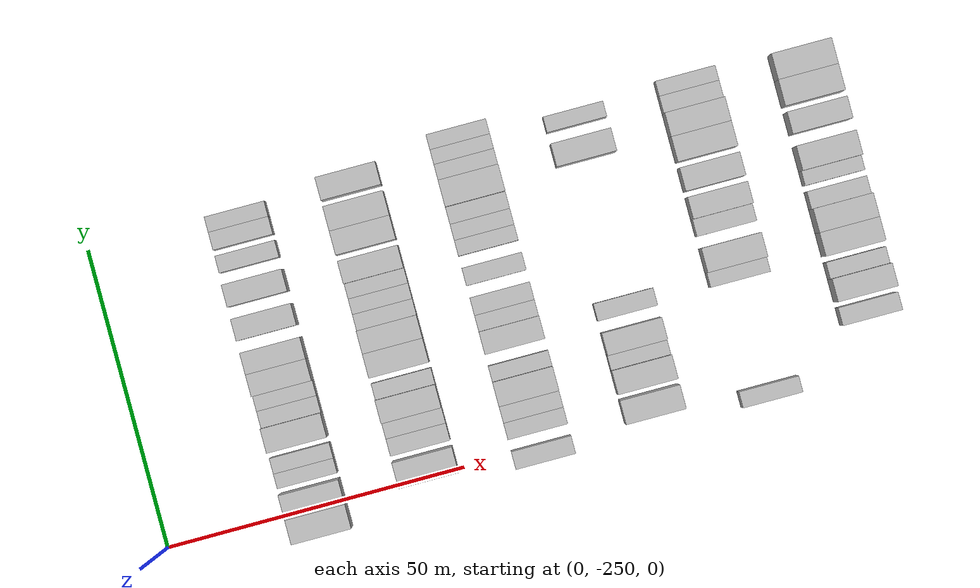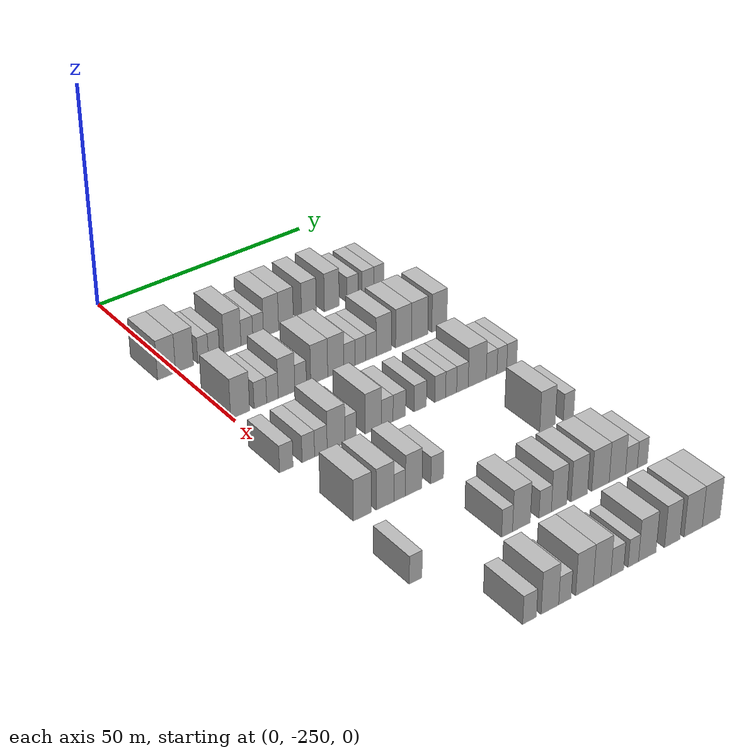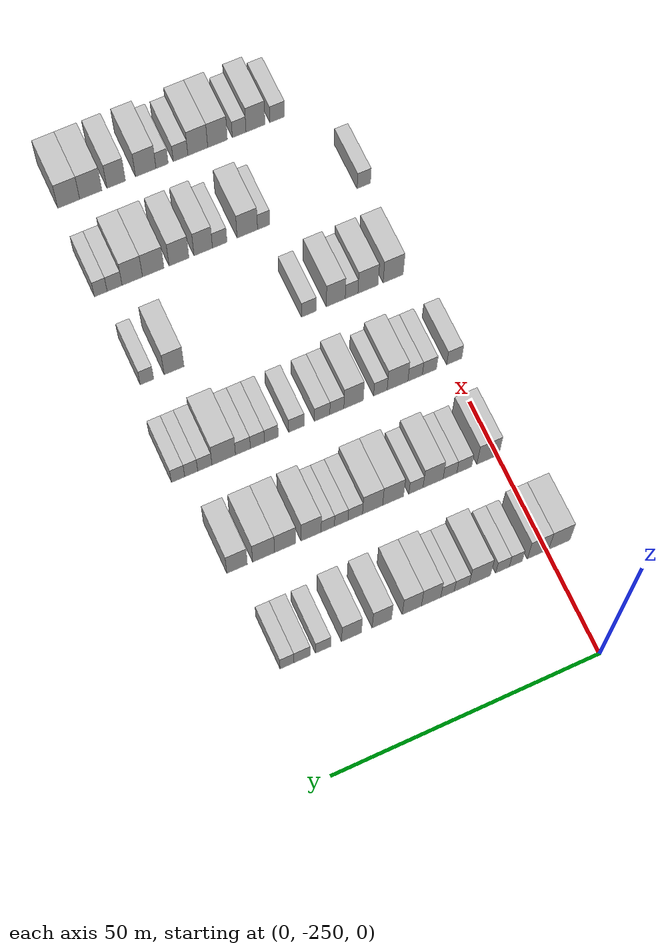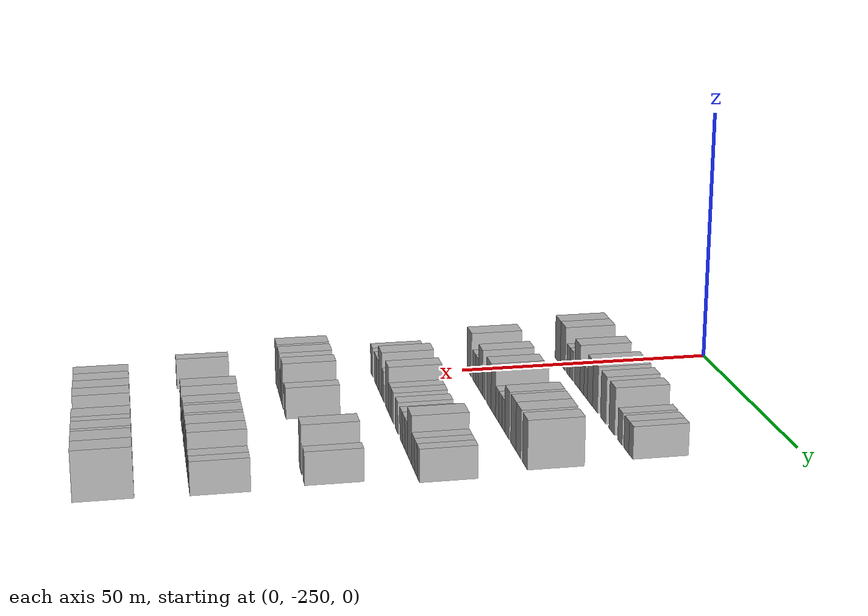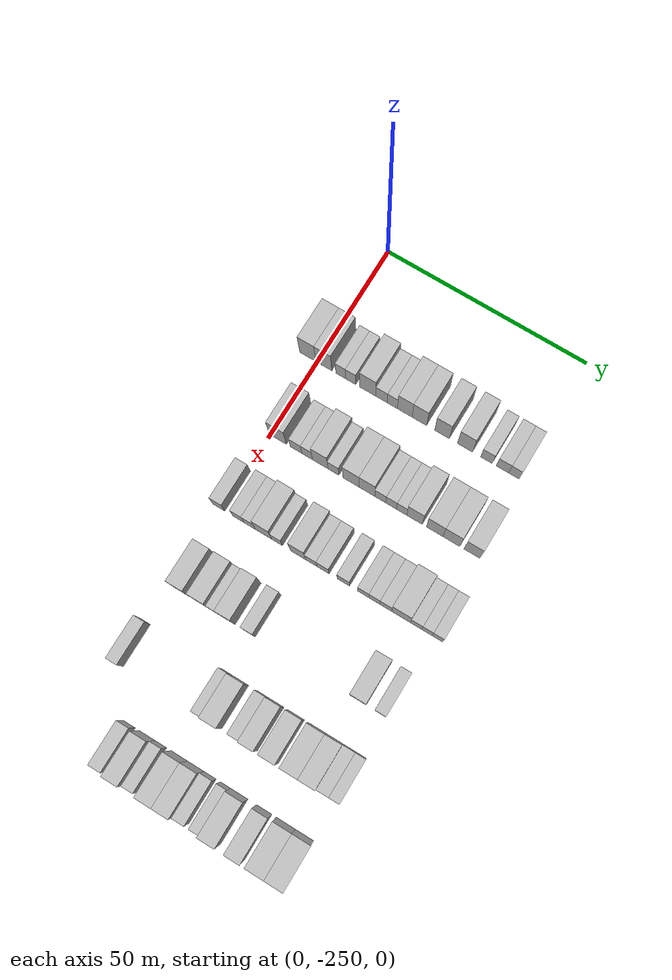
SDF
<sdf version="1.6">
 <world name="default">
  <model name="building_26">
   <static>1</static>
   <pose>25.0000 -252.3965 0 0.000000 0.000000 0.000000</pose>
   <link name="link">
    <pose>0 0 4.50 0 0 0</pose>
    <collision name="collision"><geometry><box><size>10.0000 4.0735 9.0000</size></box></geometry></collision>
    <visual name="visual">
     <cast_shadows>0</cast_shadows>
     <geometry><box><size>10.0000 4.0735 9.0000</size></box></geometry>
     <material>
      <script>
       <uri>model://HANNAS_wall/materials/scripts</uri>
       <uri>model://HANNAS_wall/materials/textures</uri>
       <name>vrc/HANNAS_wall</name>
      </script>
     </material>
    </visual>
   </link>
  </model>
  <model name="building_27">
   <static>1</static>
   <pose>25.0000 -248.3102 0 0.000000 0.000000 0.000000</pose>
   <link name="link">
    <pose>0 0 4.50 0 0 0</pose>
    <collision name="collision"><geometry><box><size>10.0000 4.0991 9.0000</size></box></geometry></collision>
    <visual name="visual">
     <cast_shadows>0</cast_shadows>
     <geometry><box><size>10.0000 4.0991 9.0000</size></box></geometry>
     <material>
      <script>
       <uri>model://HANNAS_wall/materials/scripts</uri>
       <uri>model://HANNAS_wall/materials/textures</uri>
       <name>vrc/HANNAS_wall</name>
      </script>
     </material>
    </visual>
   </link>
  </model>
  <model name="building_28">
   <static>1</static>
   <pose>25.0000 -244.0302 0 0.000000 0.000000 0.000000</pose>
   <link name="link">
    <pose>0 0 3.00 0 0 0</pose>
    <collision name="collision"><geometry><box><size>10.0000 2.4609 6.0000</size></box></geometry></collision>
    <visual name="visual">
     <cast_shadows>0</cast_shadows>
     <geometry><box><size>10.0000 2.4609 6.0000</size></box></geometry>
     <material>
      <script>
       <uri>model://HANNAS_wall/materials/scripts</uri>
       <uri>model://HANNAS_wall/materials/textures</uri>
       <name>vrc/HANNAS_wall</name>
      </script>
     </material>
    </visual>
   </link>
  </model>
  <model name="building_29">
   <static>1</static>
   <pose>25.0000 -241.5087 0 0.000000 0.000000 0.000000</pose>
   <link name="link">
    <pose>0 0 3.00 0 0 0</pose>
    <collision name="collision"><geometry><box><size>10.0000 2.5821 6.0000</size></box></geometry></collision>
    <visual name="visual">
     <cast_shadows>0</cast_shadows>
     <geometry><box><size>10.0000 2.5821 6.0000</size></box></geometry>
     <material>
      <script>
       <uri>model://HANNAS_wall/materials/scripts</uri>
       <uri>model://HANNAS_wall/materials/textures</uri>
       <name>vrc/HANNAS_wall</name>
      </script>
     </material>
    </visual>
   </link>
  </model>
  <model name="building_30">
   <static>1</static>
   <pose>25.0000 -237.1958 0 0.000000 0.000000 0.000000</pose>
   <link name="link">
    <pose>0 0 4.50 0 0 0</pose>
    <collision name="collision"><geometry><box><size>10.0000 4.0437 9.0000</size></box></geometry></collision>
    <visual name="visual">
     <cast_shadows>0</cast_shadows>
     <geometry><box><size>10.0000 4.0437 9.0000</size></box></geometry>
     <material>
      <script>
       <uri>model://HANNAS_wall/materials/scripts</uri>
       <uri>model://HANNAS_wall/materials/textures</uri>
       <name>vrc/HANNAS_wall</name>
      </script>
     </material>
    </visual>
   </link>
  </model>
  <model name="building_31">
   <static>1</static>
   <pose>25.0000 -233.7593 0 0.000000 0.000000 0.000000</pose>
   <link name="link">
    <pose>0 0 3.00 0 0 0</pose>
    <collision name="collision"><geometry><box><size>10.0000 2.8293 6.0000</size></box></geometry></collision>
    <visual name="visual">
     <cast_shadows>0</cast_shadows>
     <geometry><box><size>10.0000 2.8293 6.0000</size></box></geometry>
     <material>
      <script>
       <uri>model://HANNAS_wall/materials/scripts</uri>
       <uri>model://HANNAS_wall/materials/textures</uri>
       <name>vrc/HANNAS_wall</name>
      </script>
     </material>
    </visual>
   </link>
  </model>
  <model name="building_32">
   <static>1</static>
   <pose>25.0000 -231.0719 0 0.000000 0.000000 0.000000</pose>
   <link name="link">
    <pose>0 0 3.00 0 0 0</pose>
    <collision name="collision"><geometry><box><size>10.0000 2.5455 6.0000</size></box></geometry></collision>
    <visual name="visual">
     <cast_shadows>0</cast_shadows>
     <geometry><box><size>10.0000 2.5455 6.0000</size></box></geometry>
     <material>
      <script>
       <uri>model://HANNAS_wall/materials/scripts</uri>
       <uri>model://HANNAS_wall/materials/textures</uri>
       <name>vrc/HANNAS_wall</name>
      </script>
     </material>
    </visual>
   </link>
  </model>
  <model name="building_33">
   <static>1</static>
   <pose>25.0000 -227.9759 0 0.000000 0.000000 0.000000</pose>
   <link name="link">
    <pose>0 0 4.50 0 0 0</pose>
    <collision name="collision"><geometry><box><size>10.0000 3.6464 9.0000</size></box></geometry></collision>
    <visual name="visual">
     <cast_shadows>0</cast_shadows>
     <geometry><box><size>10.0000 3.6464 9.0000</size></box></geometry>
     <material>
      <script>
       <uri>model://HANNAS_wall/materials/scripts</uri>
       <uri>model://HANNAS_wall/materials/textures</uri>
       <name>vrc/HANNAS_wall</name>
      </script>
     </material>
    </visual>
   </link>
  </model>
  <model name="building_34">
   <static>1</static>
   <pose>25.0000 -224.3496 0 0.000000 0.000000 0.000000</pose>
   <link name="link">
    <pose>0 0 4.50 0 0 0</pose>
    <collision name="collision"><geometry><box><size>10.0000 3.6063 9.0000</size></box></geometry></collision>
    <visual name="visual">
     <cast_shadows>0</cast_shadows>
     <geometry><box><size>10.0000 3.6063 9.0000</size></box></geometry>
     <material>
      <script>
       <uri>model://HANNAS_wall/materials/scripts</uri>
       <uri>model://HANNAS_wall/materials/textures</uri>
       <name>vrc/HANNAS_wall</name>
      </script>
     </material>
    </visual>
   </link>
  </model>
  <model name="building_35">
   <static>1</static>
   <pose>25.0000 -218.7335 0 0.000000 0.000000 0.000000</pose>
   <link name="link">
    <pose>0 0 4.50 0 0 0</pose>
    <collision name="collision"><geometry><box><size>10.0000 3.6258 9.0000</size></box></geometry></collision>
    <visual name="visual">
     <cast_shadows>0</cast_shadows>
     <geometry><box><size>10.0000 3.6258 9.0000</size></box></geometry>
     <material>
      <script>
       <uri>model://HANNAS_wall/materials/scripts</uri>
       <uri>model://HANNAS_wall/materials/textures</uri>
       <name>vrc/HANNAS_wall</name>
      </script>
     </material>
    </visual>
   </link>
  </model>
  <model name="building_36">
   <static>1</static>
   <pose>25.0000 -213.0694 0 0.000000 0.000000 0.000000</pose>
   <link name="link">
    <pose>0 0 4.50 0 0 0</pose>
    <collision name="collision"><geometry><box><size>10.0000 3.7023 9.0000</size></box></geometry></collision>
    <visual name="visual">
     <cast_shadows>0</cast_shadows>
     <geometry><box><size>10.0000 3.7023 9.0000</size></box></geometry>
     <material>
      <script>
       <uri>model://HANNAS_wall/materials/scripts</uri>
       <uri>model://HANNAS_wall/materials/textures</uri>
       <name>vrc/HANNAS_wall</name>
      </script>
     </material>
    </visual>
   </link>
  </model>
  <model name="building_37">
   <static>1</static>
   <pose>25.0000 -207.8051 0 0.000000 0.000000 0.000000</pose>
   <link name="link">
    <pose>0 0 3.00 0 0 0</pose>
    <collision name="collision"><geometry><box><size>10.0000 2.8263 6.0000</size></box></geometry></collision>
    <visual name="visual">
     <cast_shadows>0</cast_shadows>
     <geometry><box><size>10.0000 2.8263 6.0000</size></box></geometry>
     <material>
      <script>
       <uri>model://HANNAS_wall/materials/scripts</uri>
       <uri>model://HANNAS_wall/materials/textures</uri>
       <name>vrc/HANNAS_wall</name>
      </script>
     </material>
    </visual>
   </link>
  </model>
  <model name="building_38">
   <static>1</static>
   <pose>25.0000 -203.8979 0 0.000000 0.000000 0.000000</pose>
   <link name="link">
    <pose>0 0 3.00 0 0 0</pose>
    <collision name="collision"><geometry><box><size>10.0000 2.9881 6.0000</size></box></geometry></collision>
    <visual name="visual">
     <cast_shadows>0</cast_shadows>
     <geometry><box><size>10.0000 2.9881 6.0000</size></box></geometry>
     <material>
      <script>
       <uri>model://HANNAS_wall/materials/scripts</uri>
       <uri>model://HANNAS_wall/materials/textures</uri>
       <name>vrc/HANNAS_wall</name>
      </script>
     </material>
    </visual>
   </link>
  </model>
  <model name="building_39">
   <static>1</static>
   <pose>25.0000 -201.1234 0 0.000000 0.000000 0.000000</pose>
   <link name="link">
    <pose>0 0 3.00 0 0 0</pose>
    <collision name="collision"><geometry><box><size>10.0000 2.5610 6.0000</size></box></geometry></collision>
    <visual name="visual">
     <cast_shadows>0</cast_shadows>
     <geometry><box><size>10.0000 2.5610 6.0000</size></box></geometry>
     <material>
      <script>
       <uri>model://HANNAS_wall/materials/scripts</uri>
       <uri>model://HANNAS_wall/materials/textures</uri>
       <name>vrc/HANNAS_wall</name>
      </script>
     </material>
    </visual>
   </link>
  </model>
  <model name="building_187">
   <static>1</static>
   <pose>44.0000 -248.0796 0 0.000000 0.000000 0.000000</pose>
   <link name="link">
    <pose>0 0 4.50 0 0 0</pose>
    <collision name="collision"><geometry><box><size>10.0000 4.2843 9.0000</size></box></geometry></collision>
    <visual name="visual">
     <cast_shadows>0</cast_shadows>
     <geometry><box><size>10.0000 4.2843 9.0000</size></box></geometry>
     <material>
      <script>
       <uri>model://HANNAS_wall/materials/scripts</uri>
       <uri>model://HANNAS_wall/materials/textures</uri>
       <name>vrc/HANNAS_wall</name>
      </script>
     </material>
    </visual>
   </link>
  </model>
  <model name="building_188">
   <static>1</static>
   <pose>44.0000 -243.5016 0 0.000000 0.000000 0.000000</pose>
   <link name="link">
    <pose>0 0 3.00 0 0 0</pose>
    <collision name="collision"><geometry><box><size>10.0000 2.8717 6.0000</size></box></geometry></collision>
    <visual name="visual">
     <cast_shadows>0</cast_shadows>
     <geometry><box><size>10.0000 2.8717 6.0000</size></box></geometry>
     <material>
      <script>
       <uri>model://HANNAS_wall/materials/scripts</uri>
       <uri>model://HANNAS_wall/materials/textures</uri>
       <name>vrc/HANNAS_wall</name>
      </script>
     </material>
    </visual>
   </link>
  </model>
  <model name="building_189">
   <static>1</static>
   <pose>44.0000 -240.7435 0 0.000000 0.000000 0.000000</pose>
   <link name="link">
    <pose>0 0 3.00 0 0 0</pose>
    <collision name="collision"><geometry><box><size>10.0000 2.6445 6.0000</size></box></geometry></collision>
    <visual name="visual">
     <cast_shadows>0</cast_shadows>
     <geometry><box><size>10.0000 2.6445 6.0000</size></box></geometry>
     <material>
      <script>
       <uri>model://HANNAS_wall/materials/scripts</uri>
       <uri>model://HANNAS_wall/materials/textures</uri>
       <name>vrc/HANNAS_wall</name>
      </script>
     </material>
    </visual>
   </link>
  </model>
  <model name="building_190">
   <static>1</static>
   <pose>44.0000 -237.4860 0 0.000000 0.000000 0.000000</pose>
   <link name="link">
    <pose>0 0 4.50 0 0 0</pose>
    <collision name="collision"><geometry><box><size>10.0000 3.8706 9.0000</size></box></geometry></collision>
    <visual name="visual">
     <cast_shadows>0</cast_shadows>
     <geometry><box><size>10.0000 3.8706 9.0000</size></box></geometry>
     <material>
      <script>
       <uri>model://HANNAS_wall/materials/scripts</uri>
       <uri>model://HANNAS_wall/materials/textures</uri>
       <name>vrc/HANNAS_wall</name>
      </script>
     </material>
    </visual>
   </link>
  </model>
  <model name="building_191">
   <static>1</static>
   <pose>44.0000 -234.1976 0 0.000000 0.000000 0.000000</pose>
   <link name="link">
    <pose>0 0 3.00 0 0 0</pose>
    <collision name="collision"><geometry><box><size>10.0000 2.7062 6.0000</size></box></geometry></collision>
    <visual name="visual">
     <cast_shadows>0</cast_shadows>
     <geometry><box><size>10.0000 2.7062 6.0000</size></box></geometry>
     <material>
      <script>
       <uri>model://HANNAS_wall/materials/scripts</uri>
       <uri>model://HANNAS_wall/materials/textures</uri>
       <name>vrc/HANNAS_wall</name>
      </script>
     </material>
    </visual>
   </link>
  </model>
  <model name="building_192">
   <static>1</static>
   <pose>44.0000 -229.8366 0 0.000000 0.000000 0.000000</pose>
   <link name="link">
    <pose>0 0 4.50 0 0 0</pose>
    <collision name="collision"><geometry><box><size>10.0000 4.0158 9.0000</size></box></geometry></collision>
    <visual name="visual">
     <cast_shadows>0</cast_shadows>
     <geometry><box><size>10.0000 4.0158 9.0000</size></box></geometry>
     <material>
      <script>
       <uri>model://HANNAS_wall/materials/scripts</uri>
       <uri>model://HANNAS_wall/materials/textures</uri>
       <name>vrc/HANNAS_wall</name>
      </script>
     </material>
    </visual>
   </link>
  </model>
  <model name="building_193">
   <static>1</static>
   <pose>44.0000 -225.9093 0 0.000000 0.000000 0.000000</pose>
   <link name="link">
    <pose>0 0 4.50 0 0 0</pose>
    <collision name="collision"><geometry><box><size>10.0000 3.8388 9.0000</size></box></geometry></collision>
    <visual name="visual">
     <cast_shadows>0</cast_shadows>
     <geometry><box><size>10.0000 3.8388 9.0000</size></box></geometry>
     <material>
      <script>
       <uri>model://HANNAS_wall/materials/scripts</uri>
       <uri>model://HANNAS_wall/materials/textures</uri>
       <name>vrc/HANNAS_wall</name>
      </script>
     </material>
    </visual>
   </link>
  </model>
  <model name="building_194">
   <static>1</static>
   <pose>44.0000 -222.6290 0 0.000000 0.000000 0.000000</pose>
   <link name="link">
    <pose>0 0 3.00 0 0 0</pose>
    <collision name="collision"><geometry><box><size>10.0000 2.7217 6.0000</size></box></geometry></collision>
    <visual name="visual">
     <cast_shadows>0</cast_shadows>
     <geometry><box><size>10.0000 2.7217 6.0000</size></box></geometry>
     <material>
      <script>
       <uri>model://HANNAS_wall/materials/scripts</uri>
       <uri>model://HANNAS_wall/materials/textures</uri>
       <name>vrc/HANNAS_wall</name>
      </script>
     </material>
    </visual>
   </link>
  </model>
  <model name="building_195">
   <static>1</static>
   <pose>44.0000 -219.9682 0 0.000000 0.000000 0.000000</pose>
   <link name="link">
    <pose>0 0 3.00 0 0 0</pose>
    <collision name="collision"><geometry><box><size>10.0000 2.5999 6.0000</size></box></geometry></collision>
    <visual name="visual">
     <cast_shadows>0</cast_shadows>
     <geometry><box><size>10.0000 2.5999 6.0000</size></box></geometry>
     <material>
      <script>
       <uri>model://HANNAS_wall/materials/scripts</uri>
       <uri>model://HANNAS_wall/materials/textures</uri>
       <name>vrc/HANNAS_wall</name>
      </script>
     </material>
    </visual>
   </link>
  </model>
  <model name="building_196">
   <static>1</static>
   <pose>44.0000 -217.4107 0 0.000000 0.000000 0.000000</pose>
   <link name="link">
    <pose>0 0 3.00 0 0 0</pose>
    <collision name="collision"><geometry><box><size>10.0000 2.5150 6.0000</size></box></geometry></collision>
    <visual name="visual">
     <cast_shadows>0</cast_shadows>
     <geometry><box><size>10.0000 2.5150 6.0000</size></box></geometry>
     <material>
      <script>
       <uri>model://HANNAS_wall/materials/scripts</uri>
       <uri>model://HANNAS_wall/materials/textures</uri>
       <name>vrc/HANNAS_wall</name>
      </script>
     </material>
    </visual>
   </link>
  </model>
  <model name="building_197">
   <static>1</static>
   <pose>44.0000 -214.2616 0 0.000000 0.000000 0.000000</pose>
   <link name="link">
    <pose>0 0 4.50 0 0 0</pose>
    <collision name="collision"><geometry><box><size>10.0000 3.7832 9.0000</size></box></geometry></collision>
    <visual name="visual">
     <cast_shadows>0</cast_shadows>
     <geometry><box><size>10.0000 3.7832 9.0000</size></box></geometry>
     <material>
      <script>
       <uri>model://HANNAS_wall/materials/scripts</uri>
       <uri>model://HANNAS_wall/materials/textures</uri>
       <name>vrc/HANNAS_wall</name>
      </script>
     </material>
    </visual>
   </link>
  </model>
  <model name="building_198">
   <static>1</static>
   <pose>44.0000 -209.3748 0 0.000000 0.000000 0.000000</pose>
   <link name="link">
    <pose>0 0 4.50 0 0 0</pose>
    <collision name="collision"><geometry><box><size>10.0000 3.9902 9.0000</size></box></geometry></collision>
    <visual name="visual">
     <cast_shadows>0</cast_shadows>
     <geometry><box><size>10.0000 3.9902 9.0000</size></box></geometry>
     <material>
      <script>
       <uri>model://HANNAS_wall/materials/scripts</uri>
       <uri>model://HANNAS_wall/materials/textures</uri>
       <name>vrc/HANNAS_wall</name>
      </script>
     </material>
    </visual>
   </link>
  </model>
  <model name="building_199">
   <static>1</static>
   <pose>44.0000 -205.3283 0 0.000000 0.000000 0.000000</pose>
   <link name="link">
    <pose>0 0 4.50 0 0 0</pose>
    <collision name="collision"><geometry><box><size>10.0000 4.1029 9.0000</size></box></geometry></collision>
    <visual name="visual">
     <cast_shadows>0</cast_shadows>
     <geometry><box><size>10.0000 4.1029 9.0000</size></box></geometry>
     <material>
      <script>
       <uri>model://HANNAS_wall/materials/scripts</uri>
       <uri>model://HANNAS_wall/materials/textures</uri>
       <name>vrc/HANNAS_wall</name>
      </script>
     </material>
    </visual>
   </link>
  </model>
  <model name="building_200">
   <static>1</static>
   <pose>44.0000 -200.3586 0 0.000000 0.000000 0.000000</pose>
   <link name="link">
    <pose>0 0 4.50 0 0 0</pose>
    <collision name="collision"><geometry><box><size>10.0000 3.8366 9.0000</size></box></geometry></collision>
    <visual name="visual">
     <cast_shadows>0</cast_shadows>
     <geometry><box><size>10.0000 3.8366 9.0000</size></box></geometry>
     <material>
      <script>
       <uri>model://HANNAS_wall/materials/scripts</uri>
       <uri>model://HANNAS_wall/materials/textures</uri>
       <name>vrc/HANNAS_wall</name>
      </script>
     </material>
    </visual>
   </link>
  </model>
  <model name="building_375">
   <static>1</static>
   <pose>63.0000 -250.7950 0 0.000000 0.000000 0.000000</pose>
   <link name="link">
    <pose>0 0 3.00 0 0 0</pose>
    <collision name="collision"><geometry><box><size>10.0000 2.9681 6.0000</size></box></geometry></collision>
    <visual name="visual">
     <cast_shadows>0</cast_shadows>
     <geometry><box><size>10.0000 2.9681 6.0000</size></box></geometry>
     <material>
      <script>
       <uri>model://HANNAS_wall/materials/scripts</uri>
       <uri>model://HANNAS_wall/materials/textures</uri>
       <name>vrc/HANNAS_wall</name>
      </script>
     </material>
    </visual>
   </link>
  </model>
  <model name="building_376">
   <static>1</static>
   <pose>63.0000 -245.9231 0 0.000000 0.000000 0.000000</pose>
   <link name="link">
    <pose>0 0 3.00 0 0 0</pose>
    <collision name="collision"><geometry><box><size>10.0000 2.7758 6.0000</size></box></geometry></collision>
    <visual name="visual">
     <cast_shadows>0</cast_shadows>
     <geometry><box><size>10.0000 2.7758 6.0000</size></box></geometry>
     <material>
      <script>
       <uri>model://HANNAS_wall/materials/scripts</uri>
       <uri>model://HANNAS_wall/materials/textures</uri>
       <name>vrc/HANNAS_wall</name>
      </script>
     </material>
    </visual>
   </link>
  </model>
  <model name="building_377">
   <static>1</static>
   <pose>63.0000 -243.1224 0 0.000000 0.000000 0.000000</pose>
   <link name="link">
    <pose>0 0 3.00 0 0 0</pose>
    <collision name="collision"><geometry><box><size>10.0000 2.8256 6.0000</size></box></geometry></collision>
    <visual name="visual">
     <cast_shadows>0</cast_shadows>
     <geometry><box><size>10.0000 2.8256 6.0000</size></box></geometry>
     <material>
      <script>
       <uri>model://HANNAS_wall/materials/scripts</uri>
       <uri>model://HANNAS_wall/materials/textures</uri>
       <name>vrc/HANNAS_wall</name>
      </script>
     </material>
    </visual>
   </link>
  </model>
  <model name="building_378">
   <static>1</static>
   <pose>63.0000 -239.6822 0 0.000000 0.000000 0.000000</pose>
   <link name="link">
    <pose>0 0 4.50 0 0 0</pose>
    <collision name="collision"><geometry><box><size>10.0000 4.0548 9.0000</size></box></geometry></collision>
    <visual name="visual">
     <cast_shadows>0</cast_shadows>
     <geometry><box><size>10.0000 4.0548 9.0000</size></box></geometry>
     <material>
      <script>
       <uri>model://HANNAS_wall/materials/scripts</uri>
       <uri>model://HANNAS_wall/materials/textures</uri>
       <name>vrc/HANNAS_wall</name>
      </script>
     </material>
    </visual>
   </link>
  </model>
  <model name="building_379">
   <static>1</static>
   <pose>63.0000 -236.3418 0 0.000000 0.000000 0.000000</pose>
   <link name="link">
    <pose>0 0 3.00 0 0 0</pose>
    <collision name="collision"><geometry><box><size>10.0000 2.6259 6.0000</size></box></geometry></collision>
    <visual name="visual">
     <cast_shadows>0</cast_shadows>
     <geometry><box><size>10.0000 2.6259 6.0000</size></box></geometry>
     <material>
      <script>
       <uri>model://HANNAS_wall/materials/scripts</uri>
       <uri>model://HANNAS_wall/materials/textures</uri>
       <name>vrc/HANNAS_wall</name>
      </script>
     </material>
    </visual>
   </link>
  </model>
  <model name="building_380">
   <static>1</static>
   <pose>63.0000 -231.1433 0 0.000000 0.000000 0.000000</pose>
   <link name="link">
    <pose>0 0 4.50 0 0 0</pose>
    <collision name="collision"><geometry><box><size>10.0000 3.7711 9.0000</size></box></geometry></collision>
    <visual name="visual">
     <cast_shadows>0</cast_shadows>
     <geometry><box><size>10.0000 3.7711 9.0000</size></box></geometry>
     <material>
      <script>
       <uri>model://HANNAS_wall/materials/scripts</uri>
       <uri>model://HANNAS_wall/materials/textures</uri>
       <name>vrc/HANNAS_wall</name>
      </script>
     </material>
    </visual>
   </link>
  </model>
  <model name="building_381">
   <static>1</static>
   <pose>63.0000 -227.9047 0 0.000000 0.000000 0.000000</pose>
   <link name="link">
    <pose>0 0 3.00 0 0 0</pose>
    <collision name="collision"><geometry><box><size>10.0000 2.7061 6.0000</size></box></geometry></collision>
    <visual name="visual">
     <cast_shadows>0</cast_shadows>
     <geometry><box><size>10.0000 2.7061 6.0000</size></box></geometry>
     <material>
      <script>
       <uri>model://HANNAS_wall/materials/scripts</uri>
       <uri>model://HANNAS_wall/materials/textures</uri>
       <name>vrc/HANNAS_wall</name>
      </script>
     </material>
    </visual>
   </link>
  </model>
  <model name="building_382">
   <static>1</static>
   <pose>63.0000 -225.0700 0 0.000000 0.000000 0.000000</pose>
   <link name="link">
    <pose>0 0 3.00 0 0 0</pose>
    <collision name="collision"><geometry><box><size>10.0000 2.9633 6.0000</size></box></geometry></collision>
    <visual name="visual">
     <cast_shadows>0</cast_shadows>
     <geometry><box><size>10.0000 2.9633 6.0000</size></box></geometry>
     <material>
      <script>
       <uri>model://HANNAS_wall/materials/scripts</uri>
       <uri>model://HANNAS_wall/materials/textures</uri>
       <name>vrc/HANNAS_wall</name>
      </script>
     </material>
    </visual>
   </link>
  </model>
  <model name="building_383">
   <static>1</static>
   <pose>63.0000 -220.1108 0 0.000000 0.000000 0.000000</pose>
   <link name="link">
    <pose>0 0 3.00 0 0 0</pose>
    <collision name="collision"><geometry><box><size>10.0000 2.9551 6.0000</size></box></geometry></collision>
    <visual name="visual">
     <cast_shadows>0</cast_shadows>
     <geometry><box><size>10.0000 2.9551 6.0000</size></box></geometry>
     <material>
      <script>
       <uri>model://HANNAS_wall/materials/scripts</uri>
       <uri>model://HANNAS_wall/materials/textures</uri>
       <name>vrc/HANNAS_wall</name>
      </script>
     </material>
    </visual>
   </link>
  </model>
  <model name="building_384">
   <static>1</static>
   <pose>63.0000 -215.3176 0 0.000000 0.000000 0.000000</pose>
   <link name="link">
    <pose>0 0 3.00 0 0 0</pose>
    <collision name="collision"><geometry><box><size>10.0000 2.6313 6.0000</size></box></geometry></collision>
    <visual name="visual">
     <cast_shadows>0</cast_shadows>
     <geometry><box><size>10.0000 2.6313 6.0000</size></box></geometry>
     <material>
      <script>
       <uri>model://HANNAS_wall/materials/scripts</uri>
       <uri>model://HANNAS_wall/materials/textures</uri>
       <name>vrc/HANNAS_wall</name>
      </script>
     </material>
    </visual>
   </link>
  </model>
  <model name="building_385">
   <static>1</static>
   <pose>63.0000 -212.6566 0 0.000000 0.000000 0.000000</pose>
   <link name="link">
    <pose>0 0 3.00 0 0 0</pose>
    <collision name="collision"><geometry><box><size>10.0000 2.6908 6.0000</size></box></geometry></collision>
    <visual name="visual">
     <cast_shadows>0</cast_shadows>
     <geometry><box><size>10.0000 2.6908 6.0000</size></box></geometry>
     <material>
      <script>
       <uri>model://HANNAS_wall/materials/scripts</uri>
       <uri>model://HANNAS_wall/materials/textures</uri>
       <name>vrc/HANNAS_wall</name>
      </script>
     </material>
    </visual>
   </link>
  </model>
  <model name="building_386">
   <static>1</static>
   <pose>63.0000 -209.8909 0 0.000000 0.000000 0.000000</pose>
   <link name="link">
    <pose>0 0 3.00 0 0 0</pose>
    <collision name="collision"><geometry><box><size>10.0000 2.8407 6.0000</size></box></geometry></collision>
    <visual name="visual">
     <cast_shadows>0</cast_shadows>
     <geometry><box><size>10.0000 2.8407 6.0000</size></box></geometry>
     <material>
      <script>
       <uri>model://HANNAS_wall/materials/scripts</uri>
       <uri>model://HANNAS_wall/materials/textures</uri>
       <name>vrc/HANNAS_wall</name>
      </script>
     </material>
    </visual>
   </link>
  </model>
  <model name="building_387">
   <static>1</static>
   <pose>63.0000 -206.2380 0 0.000000 0.000000 0.000000</pose>
   <link name="link">
    <pose>0 0 4.50 0 0 0</pose>
    <collision name="collision"><geometry><box><size>10.0000 4.4651 9.0000</size></box></geometry></collision>
    <visual name="visual">
     <cast_shadows>0</cast_shadows>
     <geometry><box><size>10.0000 4.4651 9.0000</size></box></geometry>
     <material>
      <script>
       <uri>model://HANNAS_wall/materials/scripts</uri>
       <uri>model://HANNAS_wall/materials/textures</uri>
       <name>vrc/HANNAS_wall</name>
      </script>
     </material>
    </visual>
   </link>
  </model>
  <model name="building_388">
   <static>1</static>
   <pose>63.0000 -202.6528 0 0.000000 0.000000 0.000000</pose>
   <link name="link">
    <pose>0 0 3.00 0 0 0</pose>
    <collision name="collision"><geometry><box><size>10.0000 2.7051 6.0000</size></box></geometry></collision>
    <visual name="visual">
     <cast_shadows>0</cast_shadows>
     <geometry><box><size>10.0000 2.7051 6.0000</size></box></geometry>
     <material>
      <script>
       <uri>model://HANNAS_wall/materials/scripts</uri>
       <uri>model://HANNAS_wall/materials/textures</uri>
       <name>vrc/HANNAS_wall</name>
      </script>
     </material>
    </visual>
   </link>
  </model>
  <model name="building_389">
   <static>1</static>
   <pose>63.0000 -200.0701 0 0.000000 0.000000 0.000000</pose>
   <link name="link">
    <pose>0 0 3.00 0 0 0</pose>
    <collision name="collision"><geometry><box><size>10.0000 2.4605 6.0000</size></box></geometry></collision>
    <visual name="visual">
     <cast_shadows>0</cast_shadows>
     <geometry><box><size>10.0000 2.4605 6.0000</size></box></geometry>
     <material>
      <script>
       <uri>model://HANNAS_wall/materials/scripts</uri>
       <uri>model://HANNAS_wall/materials/textures</uri>
       <name>vrc/HANNAS_wall</name>
      </script>
     </material>
    </visual>
   </link>
  </model>
  <model name="building_390">
   <static>1</static>
   <pose>63.0000 -197.5863 0 0.000000 0.000000 0.000000</pose>
   <link name="link">
    <pose>0 0 3.00 0 0 0</pose>
    <collision name="collision"><geometry><box><size>10.0000 2.5071 6.0000</size></box></geometry></collision>
    <visual name="visual">
     <cast_shadows>0</cast_shadows>
     <geometry><box><size>10.0000 2.5071 6.0000</size></box></geometry>
     <material>
      <script>
       <uri>model://HANNAS_wall/materials/scripts</uri>
       <uri>model://HANNAS_wall/materials/textures</uri>
       <name>vrc/HANNAS_wall</name>
      </script>
     </material>
    </visual>
   </link>
  </model>
  <model name="building_545">
   <static>1</static>
   <pose>82.0000 -247.8241 0 0.000000 0.000000 0.000000</pose>
   <link name="link">
    <pose>0 0 4.50 0 0 0</pose>
    <collision name="collision"><geometry><box><size>10.0000 3.9835 9.0000</size></box></geometry></collision>
    <visual name="visual">
     <cast_shadows>0</cast_shadows>
     <geometry><box><size>10.0000 3.9835 9.0000</size></box></geometry>
     <material>
      <script>
       <uri>model://HANNAS_wall/materials/scripts</uri>
       <uri>model://HANNAS_wall/materials/textures</uri>
       <name>vrc/HANNAS_wall</name>
      </script>
     </material>
    </visual>
   </link>
  </model>
  <model name="building_546">
   <static>1</static>
   <pose>82.0000 -242.8403 0 0.000000 0.000000 0.000000</pose>
   <link name="link">
    <pose>0 0 4.50 0 0 0</pose>
    <collision name="collision"><geometry><box><size>10.0000 3.9842 9.0000</size></box></geometry></collision>
    <visual name="visual">
     <cast_shadows>0</cast_shadows>
     <geometry><box><size>10.0000 3.9842 9.0000</size></box></geometry>
     <material>
      <script>
       <uri>model://HANNAS_wall/materials/scripts</uri>
       <uri>model://HANNAS_wall/materials/textures</uri>
       <name>vrc/HANNAS_wall</name>
      </script>
     </material>
    </visual>
   </link>
  </model>
  <model name="building_547">
   <static>1</static>
   <pose>82.0000 -239.5933 0 0.000000 0.000000 0.000000</pose>
   <link name="link">
    <pose>0 0 3.00 0 0 0</pose>
    <collision name="collision"><geometry><box><size>10.0000 2.5098 6.0000</size></box></geometry></collision>
    <visual name="visual">
     <cast_shadows>0</cast_shadows>
     <geometry><box><size>10.0000 2.5098 6.0000</size></box></geometry>
     <material>
      <script>
       <uri>model://HANNAS_wall/materials/scripts</uri>
       <uri>model://HANNAS_wall/materials/textures</uri>
       <name>vrc/HANNAS_wall</name>
      </script>
     </material>
    </visual>
   </link>
  </model>
  <model name="building_548">
   <static>1</static>
   <pose>82.0000 -236.4797 0 0.000000 0.000000 0.000000</pose>
   <link name="link">
    <pose>0 0 4.50 0 0 0</pose>
    <collision name="collision"><geometry><box><size>10.0000 3.7175 9.0000</size></box></geometry></collision>
    <visual name="visual">
     <cast_shadows>0</cast_shadows>
     <geometry><box><size>10.0000 3.7175 9.0000</size></box></geometry>
     <material>
      <script>
       <uri>model://HANNAS_wall/materials/scripts</uri>
       <uri>model://HANNAS_wall/materials/textures</uri>
       <name>vrc/HANNAS_wall</name>
      </script>
     </material>
    </visual>
   </link>
  </model>
  <model name="building_549">
   <static>1</static>
   <pose>82.0000 -231.1735 0 0.000000 0.000000 0.000000</pose>
   <link name="link">
    <pose>0 0 3.00 0 0 0</pose>
    <collision name="collision"><geometry><box><size>10.0000 2.8949 6.0000</size></box></geometry></collision>
    <visual name="visual">
     <cast_shadows>0</cast_shadows>
     <geometry><box><size>10.0000 2.8949 6.0000</size></box></geometry>
     <material>
      <script>
       <uri>model://HANNAS_wall/materials/scripts</uri>
       <uri>model://HANNAS_wall/materials/textures</uri>
       <name>vrc/HANNAS_wall</name>
      </script>
     </material>
    </visual>
   </link>
  </model>
  <model name="building_550">
   <static>1</static>
   <pose>82.0000 -205.0057 0 0.000000 0.000000 0.000000</pose>
   <link name="link">
    <pose>0 0 4.50 0 0 0</pose>
    <collision name="collision"><geometry><box><size>10.0000 3.8135 9.0000</size></box></geometry></collision>
    <visual name="visual">
     <cast_shadows>0</cast_shadows>
     <geometry><box><size>10.0000 3.8135 9.0000</size></box></geometry>
     <material>
      <script>
       <uri>model://HANNAS_wall/materials/scripts</uri>
       <uri>model://HANNAS_wall/materials/textures</uri>
       <name>vrc/HANNAS_wall</name>
      </script>
     </material>
    </visual>
   </link>
  </model>
  <model name="building_551">
   <static>1</static>
   <pose>82.0000 -199.7979 0 0.000000 0.000000 0.000000</pose>
   <link name="link">
    <pose>0 0 3.00 0 0 0</pose>
    <collision name="collision"><geometry><box><size>10.0000 2.6020 6.0000</size></box></geometry></collision>
    <visual name="visual">
     <cast_shadows>0</cast_shadows>
     <geometry><box><size>10.0000 2.6020 6.0000</size></box></geometry>
     <material>
      <script>
       <uri>model://HANNAS_wall/materials/scripts</uri>
       <uri>model://HANNAS_wall/materials/textures</uri>
       <name>vrc/HANNAS_wall</name>
      </script>
     </material>
    </visual>
   </link>
  </model>
  <model name="building_696">
   <static>1</static>
   <pose>101.0000 -250.8945 0 0.000000 0.000000 0.000000</pose>
   <link name="link">
    <pose>0 0 3.00 0 0 0</pose>
    <collision name="collision"><geometry><box><size>10.0000 2.6893 6.0000</size></box></geometry></collision>
    <visual name="visual">
     <cast_shadows>0</cast_shadows>
     <geometry><box><size>10.0000 2.6893 6.0000</size></box></geometry>
     <material>
      <script>
       <uri>model://HANNAS_wall/materials/scripts</uri>
       <uri>model://HANNAS_wall/materials/textures</uri>
       <name>vrc/HANNAS_wall</name>
      </script>
     </material>
    </visual>
   </link>
  </model>
  <model name="building_697">
   <static>1</static>
   <pose>101.0000 -230.8724 0 0.000000 0.000000 0.000000</pose>
   <link name="link">
    <pose>0 0 3.00 0 0 0</pose>
    <collision name="collision"><geometry><box><size>10.0000 2.4516 6.0000</size></box></geometry></collision>
    <visual name="visual">
     <cast_shadows>0</cast_shadows>
     <geometry><box><size>10.0000 2.4516 6.0000</size></box></geometry>
     <material>
      <script>
       <uri>model://HANNAS_wall/materials/scripts</uri>
       <uri>model://HANNAS_wall/materials/textures</uri>
       <name>vrc/HANNAS_wall</name>
      </script>
     </material>
    </visual>
   </link>
  </model>
  <model name="building_698">
   <static>1</static>
   <pose>101.0000 -227.6229 0 0.000000 0.000000 0.000000</pose>
   <link name="link">
    <pose>0 0 4.50 0 0 0</pose>
    <collision name="collision"><geometry><box><size>10.0000 4.0472 9.0000</size></box></geometry></collision>
    <visual name="visual">
     <cast_shadows>0</cast_shadows>
     <geometry><box><size>10.0000 4.0472 9.0000</size></box></geometry>
     <material>
      <script>
       <uri>model://HANNAS_wall/materials/scripts</uri>
       <uri>model://HANNAS_wall/materials/textures</uri>
       <name>vrc/HANNAS_wall</name>
      </script>
     </material>
    </visual>
   </link>
  </model>
  <model name="building_699">
   <static>1</static>
   <pose>101.0000 -222.1688 0 0.000000 0.000000 0.000000</pose>
   <link name="link">
    <pose>0 0 3.00 0 0 0</pose>
    <collision name="collision"><geometry><box><size>10.0000 2.8610 6.0000</size></box></geometry></collision>
    <visual name="visual">
     <cast_shadows>0</cast_shadows>
     <geometry><box><size>10.0000 2.8610 6.0000</size></box></geometry>
     <material>
      <script>
       <uri>model://HANNAS_wall/materials/scripts</uri>
       <uri>model://HANNAS_wall/materials/textures</uri>
       <name>vrc/HANNAS_wall</name>
      </script>
     </material>
    </visual>
   </link>
  </model>
  <model name="building_700">
   <static>1</static>
   <pose>101.0000 -218.9213 0 0.000000 0.000000 0.000000</pose>
   <link name="link">
    <pose>0 0 4.50 0 0 0</pose>
    <collision name="collision"><geometry><box><size>10.0000 3.6342 9.0000</size></box></geometry></collision>
    <visual name="visual">
     <cast_shadows>0</cast_shadows>
     <geometry><box><size>10.0000 3.6342 9.0000</size></box></geometry>
     <material>
      <script>
       <uri>model://HANNAS_wall/materials/scripts</uri>
       <uri>model://HANNAS_wall/materials/textures</uri>
       <name>vrc/HANNAS_wall</name>
      </script>
     </material>
    </visual>
   </link>
  </model>
  <model name="building_701">
   <static>1</static>
   <pose>101.0000 -214.1590 0 0.000000 0.000000 0.000000</pose>
   <link name="link">
    <pose>0 0 4.50 0 0 0</pose>
    <collision name="collision"><geometry><box><size>10.0000 3.8903 9.0000</size></box></geometry></collision>
    <visual name="visual">
     <cast_shadows>0</cast_shadows>
     <geometry><box><size>10.0000 3.8903 9.0000</size></box></geometry>
     <material>
      <script>
       <uri>model://HANNAS_wall/materials/scripts</uri>
       <uri>model://HANNAS_wall/materials/textures</uri>
       <name>vrc/HANNAS_wall</name>
      </script>
     </material>
    </visual>
   </link>
  </model>
  <model name="building_702">
   <static>1</static>
   <pose>101.0000 -209.1180 0 0.000000 0.000000 0.000000</pose>
   <link name="link">
    <pose>0 0 4.50 0 0 0</pose>
    <collision name="collision"><geometry><box><size>10.0000 4.1918 9.0000</size></box></geometry></collision>
    <visual name="visual">
     <cast_shadows>0</cast_shadows>
     <geometry><box><size>10.0000 4.1918 9.0000</size></box></geometry>
     <material>
      <script>
       <uri>model://HANNAS_wall/materials/scripts</uri>
       <uri>model://HANNAS_wall/materials/textures</uri>
       <name>vrc/HANNAS_wall</name>
      </script>
     </material>
    </visual>
   </link>
  </model>
  <model name="building_703">
   <static>1</static>
   <pose>101.0000 -205.0323 0 0.000000 0.000000 0.000000</pose>
   <link name="link">
    <pose>0 0 4.50 0 0 0</pose>
    <collision name="collision"><geometry><box><size>10.0000 3.9796 9.0000</size></box></geometry></collision>
    <visual name="visual">
     <cast_shadows>0</cast_shadows>
     <geometry><box><size>10.0000 3.9796 9.0000</size></box></geometry>
     <material>
      <script>
       <uri>model://HANNAS_wall/materials/scripts</uri>
       <uri>model://HANNAS_wall/materials/textures</uri>
       <name>vrc/HANNAS_wall</name>
      </script>
     </material>
    </visual>
   </link>
  </model>
  <model name="building_704">
   <static>1</static>
   <pose>101.0000 -201.5906 0 0.000000 0.000000 0.000000</pose>
   <link name="link">
    <pose>0 0 3.00 0 0 0</pose>
    <collision name="collision"><geometry><box><size>10.0000 2.9038 6.0000</size></box></geometry></collision>
    <visual name="visual">
     <cast_shadows>0</cast_shadows>
     <geometry><box><size>10.0000 2.9038 6.0000</size></box></geometry>
     <material>
      <script>
       <uri>model://HANNAS_wall/materials/scripts</uri>
       <uri>model://HANNAS_wall/materials/textures</uri>
       <name>vrc/HANNAS_wall</name>
      </script>
     </material>
    </visual>
   </link>
  </model>
  <model name="building_705">
   <static>1</static>
   <pose>101.0000 -198.8941 0 0.000000 0.000000 0.000000</pose>
   <link name="link">
    <pose>0 0 3.00 0 0 0</pose>
    <collision name="collision"><geometry><box><size>10.0000 2.4893 6.0000</size></box></geometry></collision>
    <visual name="visual">
     <cast_shadows>0</cast_shadows>
     <geometry><box><size>10.0000 2.4893 6.0000</size></box></geometry>
     <material>
      <script>
       <uri>model://HANNAS_wall/materials/scripts</uri>
       <uri>model://HANNAS_wall/materials/textures</uri>
       <name>vrc/HANNAS_wall</name>
      </script>
     </material>
    </visual>
   </link>
  </model>
  <model name="building_866">
   <static>1</static>
   <pose>120.0000 -242.1207 0 0.000000 0.000000 0.000000</pose>
   <link name="link">
    <pose>0 0 3.00 0 0 0</pose>
    <collision name="collision"><geometry><box><size>10.0000 2.9802 6.0000</size></box></geometry></collision>
    <visual name="visual">
     <cast_shadows>0</cast_shadows>
     <geometry><box><size>10.0000 2.9802 6.0000</size></box></geometry>
     <material>
      <script>
       <uri>model://HANNAS_wall/materials/scripts</uri>
       <uri>model://HANNAS_wall/materials/textures</uri>
       <name>vrc/HANNAS_wall</name>
      </script>
     </material>
    </visual>
   </link>
  </model>
  <model name="building_867">
   <static>1</static>
   <pose>120.0000 -237.7178 0 0.000000 0.000000 0.000000</pose>
   <link name="link">
    <pose>0 0 4.50 0 0 0</pose>
    <collision name="collision"><geometry><box><size>10.0000 3.8255 9.0000</size></box></geometry></collision>
    <visual name="visual">
     <cast_shadows>0</cast_shadows>
     <geometry><box><size>10.0000 3.8255 9.0000</size></box></geometry>
     <material>
      <script>
       <uri>model://HANNAS_wall/materials/scripts</uri>
       <uri>model://HANNAS_wall/materials/textures</uri>
       <name>vrc/HANNAS_wall</name>
      </script>
     </material>
    </visual>
   </link>
  </model>
  <model name="building_868">
   <static>1</static>
   <pose>120.0000 -234.4294 0 0.000000 0.000000 0.000000</pose>
   <link name="link">
    <pose>0 0 3.00 0 0 0</pose>
    <collision name="collision"><geometry><box><size>10.0000 2.7513 6.0000</size></box></geometry></collision>
    <visual name="visual">
     <cast_shadows>0</cast_shadows>
     <geometry><box><size>10.0000 2.7513 6.0000</size></box></geometry>
     <material>
      <script>
       <uri>model://HANNAS_wall/materials/scripts</uri>
       <uri>model://HANNAS_wall/materials/textures</uri>
       <name>vrc/HANNAS_wall</name>
      </script>
     </material>
    </visual>
   </link>
  </model>
  <model name="building_869">
   <static>1</static>
   <pose>120.0000 -230.0775 0 0.000000 0.000000 0.000000</pose>
   <link name="link">
    <pose>0 0 4.50 0 0 0</pose>
    <collision name="collision"><geometry><box><size>10.0000 3.9526 9.0000</size></box></geometry></collision>
    <visual name="visual">
     <cast_shadows>0</cast_shadows>
     <geometry><box><size>10.0000 3.9526 9.0000</size></box></geometry>
     <material>
      <script>
       <uri>model://HANNAS_wall/materials/scripts</uri>
       <uri>model://HANNAS_wall/materials/textures</uri>
       <name>vrc/HANNAS_wall</name>
      </script>
     </material>
    </visual>
   </link>
  </model>
  <model name="building_870">
   <static>1</static>
   <pose>120.0000 -226.1175 0 0.000000 0.000000 0.000000</pose>
   <link name="link">
    <pose>0 0 4.50 0 0 0</pose>
    <collision name="collision"><geometry><box><size>10.0000 3.9674 9.0000</size></box></geometry></collision>
    <visual name="visual">
     <cast_shadows>0</cast_shadows>
     <geometry><box><size>10.0000 3.9674 9.0000</size></box></geometry>
     <material>
      <script>
       <uri>model://HANNAS_wall/materials/scripts</uri>
       <uri>model://HANNAS_wall/materials/textures</uri>
       <name>vrc/HANNAS_wall</name>
      </script>
     </material>
    </visual>
   </link>
  </model>
  <model name="building_871">
   <static>1</static>
   <pose>120.0000 -222.6709 0 0.000000 0.000000 0.000000</pose>
   <link name="link">
    <pose>0 0 3.00 0 0 0</pose>
    <collision name="collision"><geometry><box><size>10.0000 2.9258 6.0000</size></box></geometry></collision>
    <visual name="visual">
     <cast_shadows>0</cast_shadows>
     <geometry><box><size>10.0000 2.9258 6.0000</size></box></geometry>
     <material>
      <script>
       <uri>model://HANNAS_wall/materials/scripts</uri>
       <uri>model://HANNAS_wall/materials/textures</uri>
       <name>vrc/HANNAS_wall</name>
      </script>
     </material>
    </visual>
   </link>
  </model>
  <model name="building_872">
   <static>1</static>
   <pose>120.0000 -218.9907 0 0.000000 0.000000 0.000000</pose>
   <link name="link">
    <pose>0 0 3.00 0 0 0</pose>
    <collision name="collision"><geometry><box><size>10.0000 2.4345 6.0000</size></box></geometry></collision>
    <visual name="visual">
     <cast_shadows>0</cast_shadows>
     <geometry><box><size>10.0000 2.4345 6.0000</size></box></geometry>
     <material>
      <script>
       <uri>model://HANNAS_wall/materials/scripts</uri>
       <uri>model://HANNAS_wall/materials/textures</uri>
       <name>vrc/HANNAS_wall</name>
      </script>
     </material>
    </visual>
   </link>
  </model>
  <model name="building_873">
   <static>1</static>
   <pose>120.0000 -215.7347 0 0.000000 0.000000 0.000000</pose>
   <link name="link">
    <pose>0 0 4.50 0 0 0</pose>
    <collision name="collision"><geometry><box><size>10.0000 4.0776 9.0000</size></box></geometry></collision>
    <visual name="visual">
     <cast_shadows>0</cast_shadows>
     <geometry><box><size>10.0000 4.0776 9.0000</size></box></geometry>
     <material>
      <script>
       <uri>model://HANNAS_wall/materials/scripts</uri>
       <uri>model://HANNAS_wall/materials/textures</uri>
       <name>vrc/HANNAS_wall</name>
      </script>
     </material>
    </visual>
   </link>
  </model>
  <model name="building_874">
   <static>1</static>
   <pose>120.0000 -209.8667 0 0.000000 0.000000 0.000000</pose>
   <link name="link">
    <pose>0 0 4.50 0 0 0</pose>
    <collision name="collision"><geometry><box><size>10.0000 3.6585 9.0000</size></box></geometry></collision>
    <visual name="visual">
     <cast_shadows>0</cast_shadows>
     <geometry><box><size>10.0000 3.6585 9.0000</size></box></geometry>
     <material>
      <script>
       <uri>model://HANNAS_wall/materials/scripts</uri>
       <uri>model://HANNAS_wall/materials/textures</uri>
       <name>vrc/HANNAS_wall</name>
      </script>
     </material>
    </visual>
   </link>
  </model>
  <model name="building_875">
   <static>1</static>
   <pose>120.0000 -204.8462 0 0.000000 0.000000 0.000000</pose>
   <link name="link">
    <pose>0 0 4.50 0 0 0</pose>
    <collision name="collision"><geometry><box><size>10.0000 4.3824 9.0000</size></box></geometry></collision>
    <visual name="visual">
     <cast_shadows>0</cast_shadows>
     <geometry><box><size>10.0000 4.3824 9.0000</size></box></geometry>
     <material>
      <script>
       <uri>model://HANNAS_wall/materials/scripts</uri>
       <uri>model://HANNAS_wall/materials/textures</uri>
       <name>vrc/HANNAS_wall</name>
      </script>
     </material>
    </visual>
   </link>
  </model>
  <model name="building_876">
   <static>1</static>
   <pose>120.0000 -200.4933 0 0.000000 0.000000 0.000000</pose>
   <link name="link">
    <pose>0 0 4.50 0 0 0</pose>
    <collision name="collision"><geometry><box><size>10.0000 4.3234 9.0000</size></box></geometry></collision>
    <visual name="visual">
     <cast_shadows>0</cast_shadows>
     <geometry><box><size>10.0000 4.3234 9.0000</size></box></geometry>
     <material>
      <script>
       <uri>model://HANNAS_wall/materials/scripts</uri>
       <uri>model://HANNAS_wall/materials/textures</uri>
       <name>vrc/HANNAS_wall</name>
      </script>
     </material>
    </visual>
   </link>
  </model>
 </world>
</sdf>
